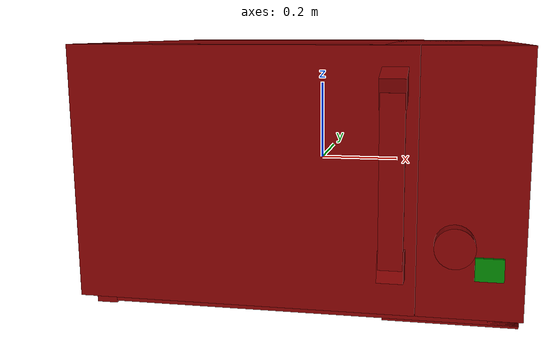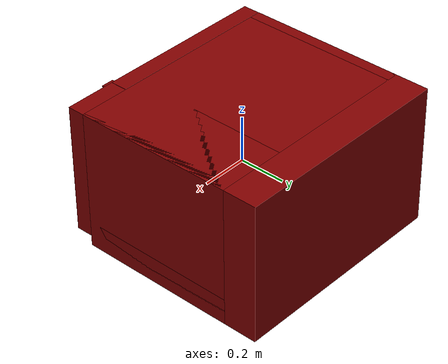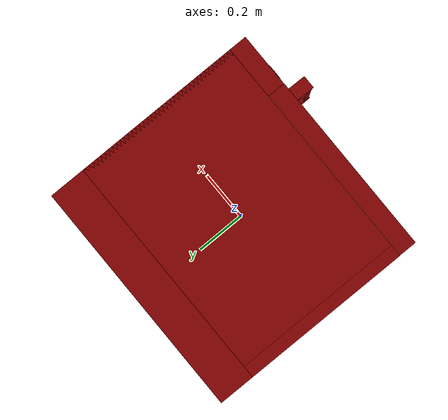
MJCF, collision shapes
<?xml version='1.0' encoding='UTF-8'?>
<mujoco model="model">
  <compiler angle="radian"/>
  <asset>
    <texture file="visuals/material_0.png" name="tex-model" type="2d"/>
    <texture type="2d" name="image7" file="visuals/image7.png"/>
    <texture type="2d" name="image10" file="visuals/image10.png"/>
    <texture type="2d" name="image13" file="visuals/image13.png"/>
    <material name="model" reflectance="0.5" texrepeat="1 1" texture="tex-model" texuniform="false"/>
    <material name="TX_Microwave_2_1" texture="image7" specular="0.5" shininess="0.25"/>
    <material name="TX_Microwave_2_2" texture="image10" specular="0.5" shininess="0.25"/>
    <material name="TX_Microwave_2_3" texture="image13" specular="0.5" shininess="0.25"/>
    <mesh file="visuals/model_0.obj" name="model_0_vis" scale="1 1 1"/>
    <mesh file="visuals/model_1.obj" name="model_1_vis" scale="1 1 1"/>
    <mesh file="visuals/model_2.obj" name="model_2_vis" scale="1 1 1"/>
    <mesh file="visuals/door_0.obj" name="door_0_vis" scale="1 1 1"/>
    <mesh file="visuals/door_1.obj" name="door_1_vis" scale="1 1 1"/>
    <mesh file="visuals/door_2.obj" name="door_2_vis" scale="1 1 1"/>
  </asset>
  <default>
    <default class="visual">
      <geom conaffinity="0" contype="0" group="1" type="mesh"/>
    </default>
    <default class="collision">
      <geom group="0" rgba="0.5 0 0 0.5"/>
    </default>
    <default class="region">
      <geom group="1" conaffinity="0" contype="0" rgba="0 1 0 0"/>
    </default>
  </default>
  <worldbody>
    <body>
      <body name="object">
        <geom solimp="0.998 0.998 0.001" solref="0.001 1" density="100" friction="0.95 0.3 0.1" type="mesh" mesh="model_0_vis" material="TX_Microwave_2_2" class="visual"/>
        <geom solimp="0.998 0.998 0.001" solref="0.001 1" density="100" friction="0.95 0.3 0.1" type="mesh" mesh="model_1_vis" material="TX_Microwave_2_3" class="visual"/>
        <geom solimp="0.998 0.998 0.001" solref="0.001 1" density="100" friction="0.95 0.3 0.1" type="mesh" mesh="model_2_vis" material="TX_Microwave_2_1" class="visual"/>
        <!-- Back -->
        <geom class="collision" type="box" pos="0 0.412 0" size="0.493 0.088 0.308"/>
        <!-- Bottom -->
        <geom class="collision" type="box" pos="0 0 -0.248" size="0.493 0.351 0.055"/>
        <!-- Left -->
        <geom class="collision" type="box" pos="-0.468 0 0" size="0.025 0.351 0.308"/>
        <!-- Right -->
        <geom class="collision" type="box" pos="0.343 0 0" size="0.15 0.351 0.308"/>
        <!-- Top -->
        <geom class="collision" type="box" pos="0 0 0.279" size="0.493 0.351 0.029"/>
        <!-- Numpad -->
        <geom class="collision" type="box" pos="0.381 -0.388 0.023" size="0.112 0.037 0.285"/>
        <!-- Knob -->
        <geom class="collision" type="cylinder" pos="0.3475  -0.44 -0.1" size="0.043 0.017 0" axisangle="1 0 0 1.57"/>
        <!-- start/stop buttons -->
        <geom class="collision" type="box" pos="0.42 -0.41 -0.15" size="0.03 0.0216 0.025" name="start_button" rgba="0.0 0.5 0 0.5"/>
        <geom class="collision" type="box" pos="0.348 -0.435 -0.10" size="0.025 0.0216 0.025" name="stop_button" rgba="0.0 0.5 0 0.5"/>
        <geom class="collision" type="cylinder" pos="-0.12 -0.02 -0.20" size="0.22 0.005" rgba="0 1 0 0.5" name="tray"/>
        <body name="door">
          <joint axis="0 0 1" limited="true" name="microjoint" range="-1.57 0" damping="2" frictionloss="2" armature=".01" pos="-0.493 -0.351 0" ref="0"/>
          <geom solimp="0.998 0.998 0.001" solref="0.001 1" density="100" friction="0.95 0.3 0.1" type="mesh" mesh="door_0_vis" material="TX_Microwave_2_3" class="visual"/>
          <geom solimp="0.998 0.998 0.001" solref="0.001 1" density="100" friction="0.95 0.3 0.1" type="mesh" mesh="door_1_vis" material="TX_Microwave_2_1" class="visual"/>
          <geom solimp="0.998 0.998 0.001" solref="0.001 1" density="100" friction="0.95 0.3 0.1" type="mesh" mesh="door_2_vis" material="TX_Microwave_2_2" class="visual"/>
          <!-- Door Main -->
          <geom class="collision" type="box" pos="-0.112 -0.389 0.023" size="0.38 0.037 0.285" name="door_main"/>
          <!-- Handle Top -->
          <geom class="collision" type="box" pos="0.219 -0.453 0.226" size="0.027 0.047 0.032" axisangle="1 0 0 0.23"/>
          <!-- Handle Top -->
          <geom class="collision" type="box" pos="0.219 -0.453 -0.142" size="0.027 0.047 0.032" axisangle="1 0 0 -0.23"/>
          <!-- Handle Main -->
          <geom class="collision" type="box" pos="0.219 -0.487 0.039" size="0.025 0.0132 0.18" name="door_handle_main"/>
        </body>
        <!-- exterior bounding box points -->
        <geom class="region" name="reg_main" type="box" pos="0.0 0.019500000000000017 0.022999999999999993" size="0.493 0.4455 0.28500000000000003"/>
        <!-- interior bounding box points -->
        <geom class="region" name="reg_int" type="box" pos="-0.125 -0.013499999999999984 0.028499999999999998" size="0.318 0.3375 0.2215"/>
      <geom class="region" name="reg_tray" type="cylinder" pos="-0.12 -0.02 0.027499999999999997" size="0.22 0.2215"/></body>
    </body>
  </worldbody>
</mujoco>
